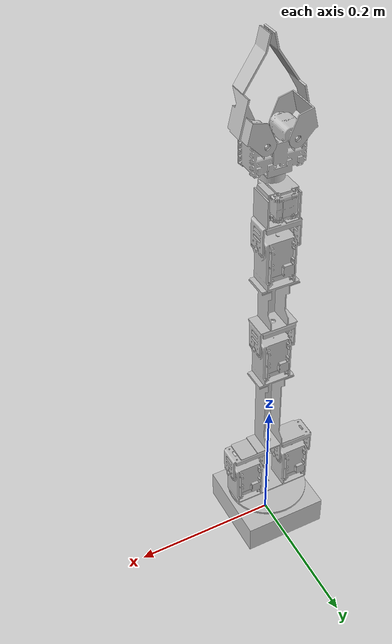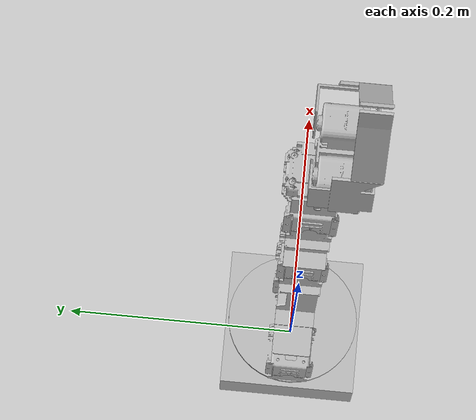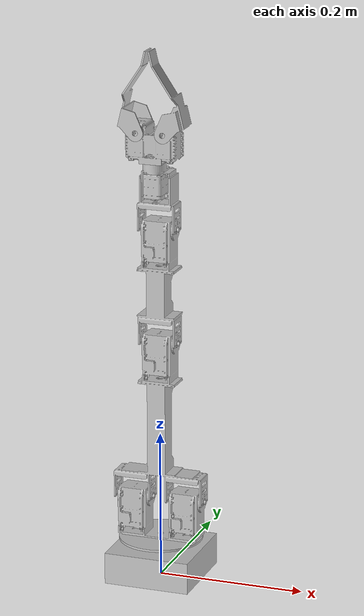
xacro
<?xml version="1.0"?>
<robot name="final_robot" xmlns:xacro="http://www.ros.org/wiki/xacro">

<!--Xacro Properties-->
<xacro:property name="deg_to_rad" value="0.01745329251994329577"/>
<xacro:property name="M_PI" value="3.14159"/>

<!--http://wiki.ros.org/urdf/XML/Transmission-->
<xacro:macro name="transmission_block" params="joint_name">
	<transmission name="tran1">
		<type>transmission_interface/SimpleTransmission</type>
		<joint name="${joint_name}">
			<hardwareInterface>hardware_interface/PositionJointInterface</hardwareInterface>
		</joint>
		<actuator name="motor1">
			<hardwareInterface>hardware_interface/PositionJointInterface</hardwareInterface>
			<mechanicalReduction>1</mechanicalReduction>
		</actuator>
	</transmission>
</xacro:macro>

<!--Fixed Base Link Frame-->
  <link name="First_Link_Base_Box">
    <inertial>
      <origin xyz="-0.00019458 -0.0086769 0.02456" rpy="0 0 0" />
      <mass value="0.13002" />
      <inertia
        ixx="9.1622E-06"
        ixy="2.0859E-07"
        ixz="1.0004E-07"
        iyy="1.7192E-06"
        iyz="-3.5725E-06"
        izz="7.4547E-06" />
    </inertial>
    <visual>
      <origin
        xyz="0 0 0"
        rpy="0 0 0" />
      <geometry>
        <mesh
          filename="package://mastering_ros_robot/meshes/1_Link_Base_Box.STL" />
      </geometry>
      <material
        name="">
        <color
          rgba="0.75294 0.75294 0.75294 1" />
      </material>
    </visual>
    <collision>
      <origin
        xyz="0 0 0"
        rpy="0 0 0" />
      <geometry>
        <mesh
          filename="package://mastering_ros_robot/meshes/1_Link_Base_Box.STL" />
      </geometry>
    </collision>
  </link>

<!--Dual Motor Table Link-->
  <link
    name="Second_Link_Dual_Table">
    <inertial>
      <origin
        xyz="0.00034487 3.4634E-06 0.04245"
        rpy="0 0 0" />
      <mass
        value="0.18993" />
      <inertia
        ixx="5.4201E-05"
        ixy="3.1591E-09"
        ixz="-6.1419E-07"
        iyy="0.00025615"
        iyz="9.5935E-09"
        izz="0.00020195" />
    </inertial>
    <visual>
      <origin
        xyz="0 0 0"
        rpy="0 0 0" />
      <geometry>
        <mesh
          filename="package://mastering_ros_robot/meshes/2_Link_Dual_Table.STL" />
      </geometry>
      <material
        name="">
        <color
          rgba="0.75294 0.75294 0.75294 1" />
      </material>
    </visual>
    <collision>
      <origin
        xyz="0 0 0"
        rpy="0 0 0" />
      <geometry>
        <mesh
          filename="package://mastering_ros_robot/meshes/2_Link_Dual_Table.STL" />
      </geometry>
    </collision>
  </link>

 <!--Joint 1-->
  <joint
    name="First_Joint_Axis"
    type="continuous">
    <origin
      xyz="0 0 0.04318"
      rpy="9.0613E-27 6.983E-15 1.2976E-12" />
    <parent
      link="First_Link_Base_Box" />
    <child
      link="Second_Link_Dual_Table" />
    <axis
      xyz="0 0 1" />
    <dynamics damping="50" friction="1"/>
  </joint>

<!--Long Arm Link-->
  <link
    name="Third_Link_Long_Arm">
    <inertial>
      <origin
        xyz="0.00028867 -0.00082645 0.15706"
        rpy="0 0 0" />
      <mass
        value="0.11628" />
      <inertia
        ixx="0.00053882"
        ixy="-2.7692E-08"
        ixz="-1.5559E-06"
        iyy="0.00055602"
        iyz="-5.3139E-06"
        izz="1.8096E-05" />
    </inertial>
    <visual>
      <origin
        xyz="0 0 0"
        rpy="0 0 0" />
      <geometry>
        <mesh
          filename="package://mastering_ros_robot/meshes/3_Link_Long_Arm.STL" />
      </geometry>
      <material
        name="">
        <color
          rgba="0.75294 0.75294 0.75294 1" />
      </material>
    </visual>
    <collision>
      <origin
        xyz="0 0 0"
        rpy="0 0 0" />
      <geometry>
        <mesh
          filename="package://mastering_ros_robot/meshes/3_Link_Long_Arm.STL" />
      </geometry>
    </collision>
  </link>

<!--Joint 2-->
  <joint
    name="Second_Joint_Axis"
    type="continuous">
    <origin
      xyz="0 0 0.067036"
      rpy="2.3456E-13 -6.9889E-09 -1.3184E-12" />
    <parent
      link="Second_Link_Dual_Table" />
    <child
      link="Third_Link_Long_Arm" />
    <axis
      xyz="1 0 0" />
    <dynamics damping="50" friction="1"/>
  </joint>

<!--Short Arm Link-->
  <link
    name="Fourth_Link_Short_Arm">
    <inertial>
      <origin
        xyz="0.00033787 -0.00043726 0.11984"
        rpy="0 0 0" />
      <mass
        value="0.099345" />
      <inertia
        ixx="0.00014073"
        ixy="-1.4628E-08"
        ixz="-6.7411E-07"
        iyy="0.00014057"
        iyz="-2.1673E-06"
        izz="1.6518E-07" />
    </inertial>
    <visual>
      <origin
        xyz="0 0 0"
        rpy="0 0 0" />
      <geometry>
        <mesh
          filename="package://mastering_ros_robot/meshes/4_Link_Short_Arm.STL" />
      </geometry>
      <material
        name="">
        <color
          rgba="0.75294 0.75294 0.75294 1" />
      </material>
    </visual>
    <collision>
      <origin
        xyz="0 0 0"
        rpy="0 0 0" />
      <geometry>
        <mesh
          filename="package://mastering_ros_robot/meshes/4_Link_Short_Arm.STL" />
      </geometry>
    </collision>
  </link>

 <!--Joint 3-->
  <joint
    name="Third_Joint_Axis"
    type="continuous">
    <origin
      xyz="0 0 0.21947"
      rpy="-2.2063E-13 -6.9889E-09 3.4904E-15" />
    <parent
      link="Third_Link_Long_Arm" />
    <child
      link="Fourth_Link_Short_Arm" />
    <axis
      xyz="1 0 0" />
    <dynamics damping="50" friction="1"/>
  </joint>

<!--Wrist Link-->
  <link
    name="Fifth_Link_Wrist">
    <inertial>
      <origin
        xyz="-4.5725E-07 -0.0029791 0.060321"
        rpy="0 0 0" />
      <mass
        value="0.06737" />
      <inertia
        ixx="1.6485E-05"
        ixy="3.4502E-11"
        ixz="5.9432E-11"
        iyy="1.841E-05"
        iyz="3.5105E-06"
        izz="4.7984E-06" />
    </inertial>
    <visual>
      <origin
        xyz="0 0 0"
        rpy="0 0 0" />
      <geometry>
        <mesh
          filename="package://mastering_ros_robot/meshes/5_Link_Wrist.STL" />
      </geometry>
      <material
        name="">
        <color
          rgba="0.75294 0.75294 0.75294 1" />
      </material>
    </visual>
    <collision>
      <origin
        xyz="0 0 0"
        rpy="0 0 0" />
      <geometry>
        <mesh
          filename="package://mastering_ros_robot/meshes/5_Link_Wrist.STL" />
      </geometry>
    </collision>
  </link>

 <!--Joint 4-->
  <joint
    name="Fourth_Joint_Axis"
    type="continuous">
    <origin
      xyz="0 0 0.15597"
      rpy="3.6577E-17 -6.9889E-09 3.4904E-15" />
    <parent
      link="Fourth_Link_Short_Arm" />
    <child
      link="Fifth_Link_Wrist" />
    <axis
      xyz="1 0 0" />
    <dynamics damping="50" friction="1"/>
  </joint>

<!--Gripper Link-->
  <link
    name="Sixth_Link_Gripper_Motors">
    <inertial>
      <origin
        xyz="-3.0635E-05 -0.00098569 0.027553"
        rpy="0 0 0" />
      <mass
        value="0.090059" />
      <inertia
        ixx="2.7887E-06"
        ixy="1.2423E-09"
        ixz="1.0838E-09"
        iyy="3.1137E-05"
        iyz="6.2968E-07"
        izz="2.9933E-05" />
    </inertial>
    <visual>
      <origin
        xyz="0 0 0"
        rpy="0 0 0" />
      <geometry>
        <mesh
          filename="package://mastering_ros_robot/meshes/6_Link_Gripper_Motors.STL" />
      </geometry>
      <material
        name="">
        <color
          rgba="0.75294 0.75294 0.75294 1" />
      </material>
    </visual>
    <collision>
      <origin
        xyz="0 0 0"
        rpy="0 0 0" />
      <geometry>
        <mesh
          filename="package://mastering_ros_robot/meshes/6_Link_Gripper_Motors.STL" />
      </geometry>
    </collision>
  </link>

 <!--Joint 5-->
  <joint
    name="Fifth_Joint_Axis"
    type="continuous">
    <origin
      xyz="0 -0.01475 0.093645"
      rpy="-6.983E-15 -3.4639E-15 -2.1972E-10" />
    <parent
      link="Fifth_Link_Wrist" />
    <child
      link="Sixth_Link_Gripper_Motors" />
    <axis
      xyz="0 0 1" />
    <dynamics damping="50" friction="1"/>
  </joint>

<!--Left Gripper Link-->
  <link
    name="Seventh_Link_Left_Gripper">
    <inertial>
      <origin
        xyz="0.0086076 -0.0057426 0.039386"
        rpy="0 0 0" />
      <mass
        value="0.010019" />
      <inertia
        ixx="9.439E-06"
        ixy="-5.0788E-07"
        ixz="2.378E-06"
        iyy="9.8633E-06"
        iyz="2.0315E-06"
        izz="1.4122E-06" />
    </inertial>
    <visual>
      <origin
        xyz="0 0 0"
        rpy="0 0 0" />
      <geometry>
        <mesh
          filename="package://mastering_ros_robot/meshes/7_Link_Left_Gripper.STL" />
      </geometry>
      <material
        name="">
        <color
          rgba="0.75294 0.75294 0.75294 1" />
      </material>
    </visual>
    <collision>
      <origin
        xyz="0 0 0"
        rpy="0 0 0" />
      <geometry>
        <mesh
          filename="package://mastering_ros_robot/meshes/7_Link_Left_Gripper.STL" />
      </geometry>
    </collision>
  </link>

 <!--Joint 6-->
  <joint
    name="Sixth_Joint_Axis"
    type="continuous">
    <origin
      xyz="0.018636 -0.000852 0.041136"
      rpy="-1.1737E-16 2.0967E-08 -3.4944E-17" />
    <parent
      link="Sixth_Link_Gripper_Motors" />
    <child
      link="Seventh_Link_Left_Gripper" />
    <axis
      xyz="0 1 0" />
    <dynamics damping="50" friction="1"/>
  </joint>

<!--Right Gripper Link-->
  <link
    name="Eigth_Link_Right_Gripper">
    <inertial>
      <origin
        xyz="-0.008556 -0.0057426 0.039398"
        rpy="0 0 0" />
      <mass
        value="0.010019" />
      <inertia
        ixx="9.4327E-06"
        ixy="5.1054E-07"
        ixz="-2.3885E-06"
        iyy="9.8633E-06"
        iyz="2.0309E-06"
        izz="1.4184E-06" />
    </inertial>
    <visual>
      <origin
        xyz="0 0 0"
        rpy="0 0 0" />
      <geometry>
        <mesh
          filename="package://mastering_ros_robot/meshes/8_Link_Right_Gripper.STL" />
      </geometry>
      <material
        name="">
        <color
          rgba="0.75294 0.75294 0.75294 1" />
      </material>
    </visual>
    <collision>
      <origin
        xyz="0 0 0"
        rpy="0 0 0" />
      <geometry>
        <mesh
          filename="package://mastering_ros_robot/meshes/8_Link_Right_Gripper.STL" />
      </geometry>
    </collision>
  </link>

 <!--Joint 7-->
  <joint
    name="Seventh_Joint_Axis"
    type="continuous">
    <origin
      xyz="-0.018636 -0.000852 0.041136"
      rpy="-1.2416E-16 2.0967E-08 -6.2579E-17" />
    <parent
      link="Sixth_Link_Gripper_Motors" />
    <child
      link="Eigth_Link_Right_Gripper" />
    <axis
      xyz="0 1 0" />
    <dynamics damping="50" friction="1"/>
  </joint>

<!--Grasper Frame Link-->
<link
    name="Reference_Link">
    <inertial>
      <origin
        xyz="0.0005 0.0005 -0.0005"
        rpy="0 0 0" />
      <mass
        value="1E-06" />
      <inertia
        ixx="0"
        ixy="0"
        ixz="0"
        iyy="0"
        iyz="0"
        izz="0" />
    </inertial>
    <visual>
      <origin
        xyz="0 0 0"
        rpy="0 0 0" />
      <geometry>
        <mesh
          filename="package://mastering_ros_robot/meshes/Reference_Link.STL" />
      </geometry>
      <material
        name="">
        <color
          rgba="0.75294 0.75294 0.75294 1" />
      </material>
    </visual>
  </link>

<!--Reference Joint-->
  <joint
    name="Reference Joint"
    type="fixed">
    <origin
      xyz="0 -0.016301 0.15004"
      rpy="-6.983E-15 2.0967E-08 2.1976E-10" />
    <parent
      link="Sixth_Link_Gripper_Motors" />
    <child
      link="Reference_Link" />
  </joint>

<!--Transmissions ROS Control-->
<xacro:transmission_block joint_name="First_Joint_Axis"/>
<xacro:transmission_block joint_name="Second_Joint_Axis"/>
<xacro:transmission_block joint_name="Third_Joint_Axis"/>
<xacro:transmission_block joint_name="Fourth_Joint_Axis"/>
<xacro:transmission_block joint_name="Fifth_Joint_Axis"/>
<xacro:transmission_block joint_name="Sixth_Joint_Axis"/>
<xacro:transmission_block joint_name="Seventh_Joint_Axis"/>

<!--Gazebo_ROS_Control Plugin-->
<gazebo>
    <plugin name="gazebo_ros_control" filename="libgazebo_ros_control.so">
      <robotNamespace>/final_robot</robotNamespace>
    </plugin>
</gazebo>

</robot>
